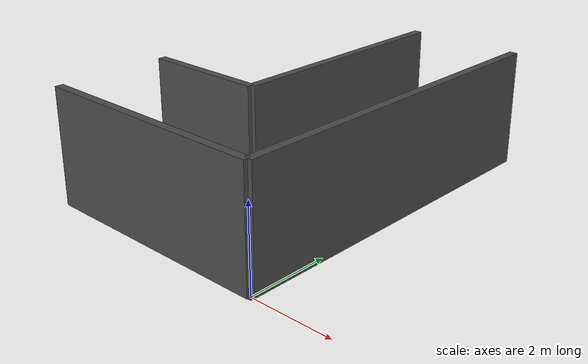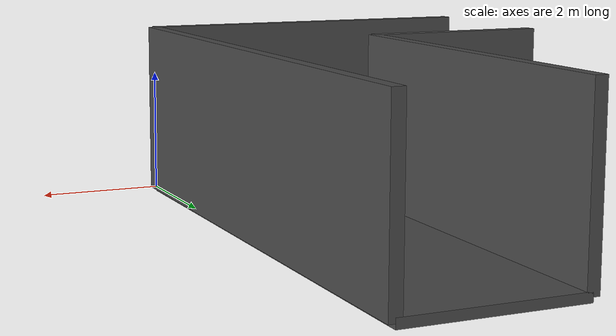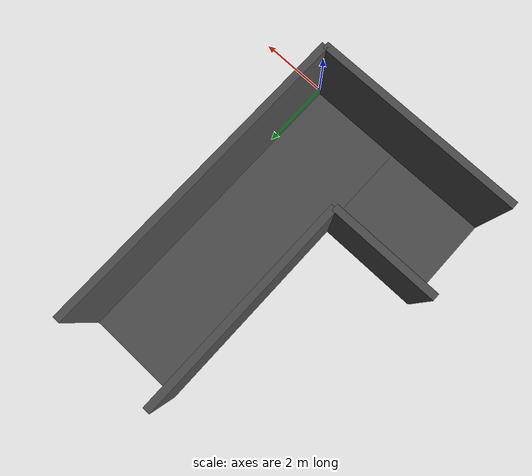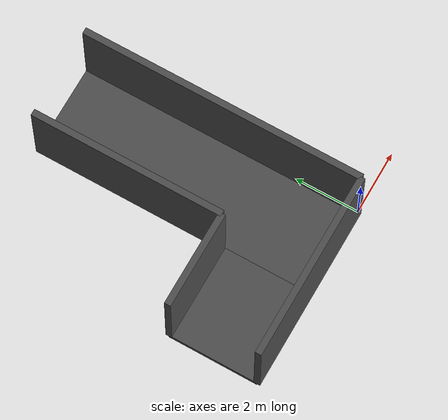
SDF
<?xml version="1.0" ?>
<sdf version="1.5">
  <model name="AIGC2_corridor_2">
    <static>true</static>
    <link name="link">
      <pose>-1.4 4.4 0 0 0 0</pose>
      <collision name="collision">
        <geometry>
          <box>
            <size>2.8 8.8 0.15</size>
          </box>
        </geometry>
      </collision>
      <visual name="visual">
        <cast_shadows>false</cast_shadows>
        <geometry>
          <box>
            <size>2.8 8.8 0.15</size>
          </box>
        </geometry>
        <material>
			<script>
				<name>Gazebo/DarkGrey</name>
				<uri>file://media/materials/scripts/gazebo.material</uri>
			</script>
        </material>
      </visual>
    </link>

    <link name="link1">
      <pose>-4.3 1.4 0 0 0 0</pose>
      <collision name="collision">
        <geometry>
          <box>
            <size>3.0 2.8 0.15</size>
          </box>
        </geometry>
      </collision>
      <visual name="visual">
        <cast_shadows>false</cast_shadows>
        <geometry>
          <box>
            <size>3.0 2.8 0.15</size>
          </box>
        </geometry>
        <material>
			<script>
				<name>Gazebo/DarkGrey</name>
				<uri>file://media/materials/scripts/gazebo.material</uri>
			</script>
        </material>
      </visual>
    </link>

    <link name="link4">
      <pose>0.0 4.4 1.4 0 0 0</pose>
      <collision name="collision">
        <geometry>
          <box>
            <size>0.2 8.8 2.8</size>
          </box>
        </geometry>
      </collision>
      <visual name="visual">
        <cast_shadows>false</cast_shadows>
        <geometry>
          <box>
            <size>0.2 8.8 2.8</size>
          </box>
        </geometry>
        <material>
			<script>
				<name>Gazebo/DarkGrey</name>
				<uri>file://media/materials/scripts/gazebo.material</uri>
			</script>
        </material>
      </visual>
    </link>

    <link name="link5">
      <pose>-2.8 5.8 1.4 0 0 0</pose>
      <collision name="collision">
        <geometry>
          <box>
            <size>0.2 6.0 2.8</size>
          </box>
        </geometry>
      </collision>
      <visual name="visual">
        <cast_shadows>false</cast_shadows>
        <geometry>
          <box>
            <size>0.2 6.0 2.8</size>
          </box>
        </geometry>
        <material>
			<script>
				<name>Gazebo/DarkGrey</name>
				<uri>file://media/materials/scripts/gazebo.material</uri>
			</script>
        </material>
      </visual>
    </link>

    <link name="link6">
      <pose>-4.3 2.8 1.4 0 0 0</pose>
      <collision name="collision">
        <geometry>
          <box>
            <size>3.0 0.2 2.8</size>
          </box>
        </geometry>
      </collision>
      <visual name="visual">
        <cast_shadows>false</cast_shadows>
        <geometry>
          <box>
            <size>3.0 0.2 2.8</size>
          </box>
        </geometry>
        <material>
			<script>
				<name>Gazebo/DarkGrey</name>
				<uri>file://media/materials/scripts/gazebo.material</uri>
			</script>
        </material>
      </visual>
    </link>

    <link name="link7">
      <pose>-2.9 0 1.4 0 0 0</pose>
      <collision name="collision">
        <geometry>
          <box>
            <size>5.8 0.2 2.8</size>
          </box>
        </geometry>
      </collision>
      <visual name="visual">
        <cast_shadows>false</cast_shadows>
        <geometry>
          <box>
            <size>5.8 0.2 2.8</size>
          </box>
        </geometry>
        <material>
			<script>
				<name>Gazebo/DarkGrey</name>
				<uri>file://media/materials/scripts/gazebo.material</uri>
			</script>
        </material>
      </visual>
    </link>

  </model>
</sdf>
